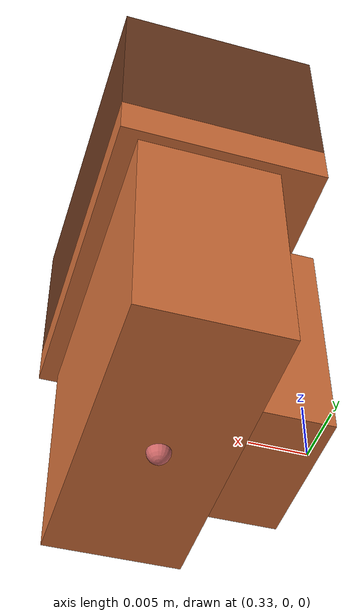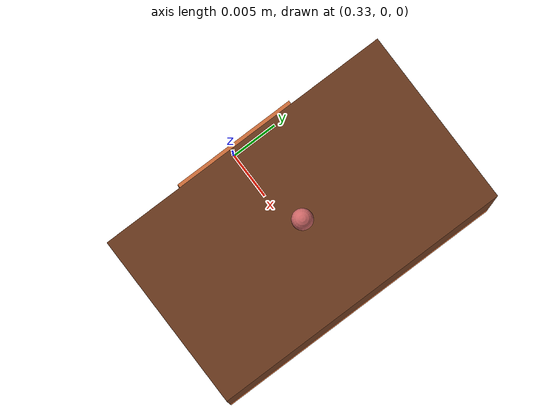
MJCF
<mujoco model="connector">
    <!-- Make sure we use radians -->
    <compiler angle="radian" />

#
    <asset>
        <material name="connector_mat" reflectance="0"
                  rgba="0.824 0.435 0.227 1" shininess="0.5" specular="0" />
        <material name="connector_mat2" reflectance="0"
                  rgba="0.412 0.2175 0.1135 1" shininess="0.5" specular="0" />
        <texture builtin="flat" height="256" width="256"
                 rgb1="1 1 1" rgb2="1 1 1" type="skybox" />
    </asset>

    <worldbody>
        <body name="connector_body" pos="0.35 0.0 0.02" quat="0 1 0 0">
            <freejoint name="connector" />

            <!-- Top box -->
            <geom name="connector_top"
                  type="box"
                  pos="-0.008775 0.0 0.00175"
                  size="0.008775 0.015 0.00175"
                  material="connector_mat"
                  density="200"
                  friction="2.0 0.3 0.1"
                  condim="6"
                  solimp="0.998 0.998 0.001" solref="0.02 1" contype="1" conaffinity="1" priority="1"/>
            <site name="connector_top"
                  type="sphere"
                  pos="-0.008775 0.0 0.00175"
                  quat="0.7071 0 0 0.7071"
                  size="0.001 0.001 0.001"
                  rgba="0.8 0.4 0.4 1"/>

            <!-- Head box -->
            <geom name="connector_head"
                  type="box"
                  pos="-0.008775 0.0 -0.007"
                  size="0.008775 0.015 0.007"
                  material="connector_mat2"
                  density="200"
                  friction="2.0 0.3 0.1"
                  condim="6"
                  solimp="0.998 0.998 0.001" solref="0.02 1" contype="1" conaffinity="1" priority="1"/>
            <site name="connector_head"
                  type="sphere"
                  pos="-0.008775 0.0 -0.007"
                  quat="0.7071 0 0 0.7071"
                  size="0.001 0.001 0.001"
                  rgba="0.8 0.4 0.4 1"/>
            <site name="connector_roof"
                  type="sphere"
                  pos="-0.008775 0.0 -0.014"
                  quat="0.7071 0 0 0.7071"
                  size="0.001 0.001 0.001"
                  rgba="0.8 0.4 0.4 1"/>

            <!-- Center box -->
            <geom name="connector_center"
                  type="box"
                  pos="-0.00769 0.0 0.0131"
                  size="0.00604 0.014175 0.0096"
                  material="connector_mat"
                  density="100"
                  friction="2.0 0.3 0.1"
                  condim="6"
                  solimp="0.998 0.998 0.001" solref="0.02 1" contype="1" conaffinity="1" priority="1"/>
            <site name="connector_center"
                  type="sphere"
                  pos="-0.00769 0.0 0.0131"
                  quat="0.7071 0 0 0.7071"
                  size="0.001 0.001 0.001"
                  rgba="0.8 0.4 0.4 1"/>
            <site name="connector_bottom"
                  type="sphere"
                  pos="-0.00769 0.0 0.0227"
                  quat="0.7071 0 0 0.7071"
                  size="0.001 0.001 0.001"
                  rgba="0.8 0.4 0.4 1"/>

            <!-- Front box -->
            <geom name="connector_front"
                  type="box"
                  pos="-0.01663 0.0 0.0131"
                  size="0.0029 0.006555 0.0096"
                  material="connector_mat"
                  density="100"
                  friction="2.0 0.3 0.1"
                  condim="6"
                  solimp="0.998 0.998 0.001" solref="0.02 1" contype="1" conaffinity="1" priority="1"/>
            <site name="connector_front"
                  type="sphere"
                  pos="-0.01663 0.0 0.0131"
                  quat="0.7071 0 0 0.7071"
                  size="0.001 0.001 0.001"
                  rgba="1 0 0 1"/>
        </body>
    </worldbody>

    <sensor>
        <framepos name="connector_bottom_pos" objtype="site" objname="connector_bottom"/>
        <framequat name="connector_bottom_quat" objtype="site" objname="connector_bottom"/>
        <framepos name="connector_roof_pos" objtype="site" objname="connector_roof"/>
        <framequat name="connector_roof_quat" objtype="site" objname="connector_roof"/>
        <framepos name="connector_head_pos" objtype="site" objname="connector_head"/>
        <framequat name="connector_head_quat" objtype="site" objname="connector_head"/>
        <framepos name="connector_center_pos" objtype="site" objname="connector_center"/>
        <framequat name="connector_center_quat" objtype="site" objname="connector_center"/>
    </sensor>

    <visual>
        <global offwidth="1920" offheight="1080"/>
        <scale framewidth="0.005" framelength="0.1"/>
    </visual>
</mujoco>
